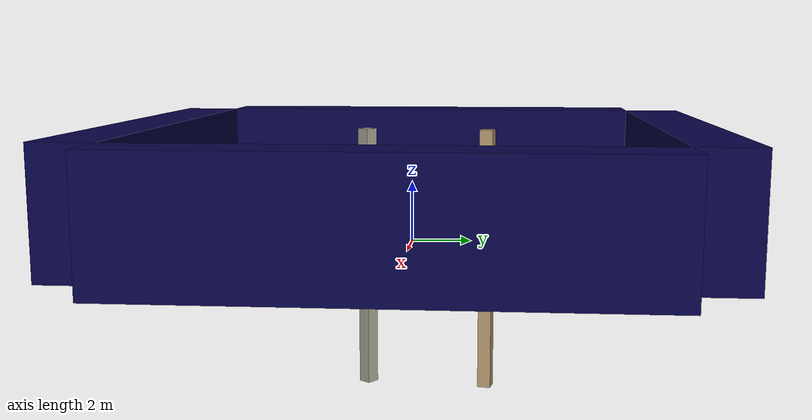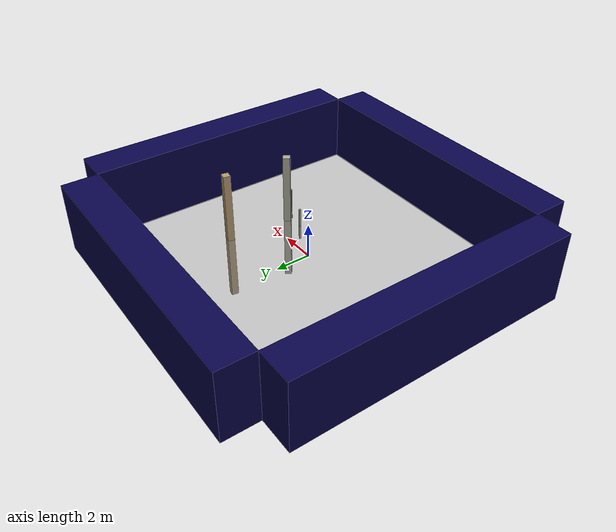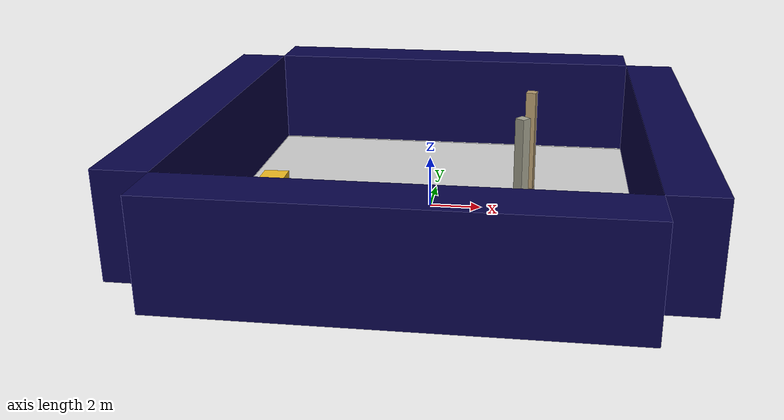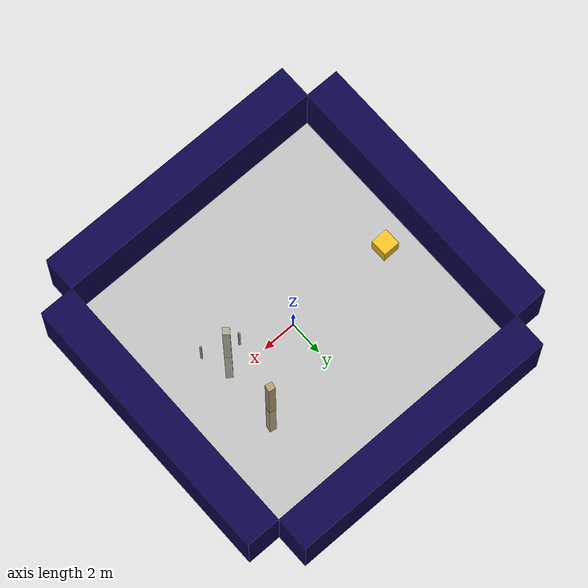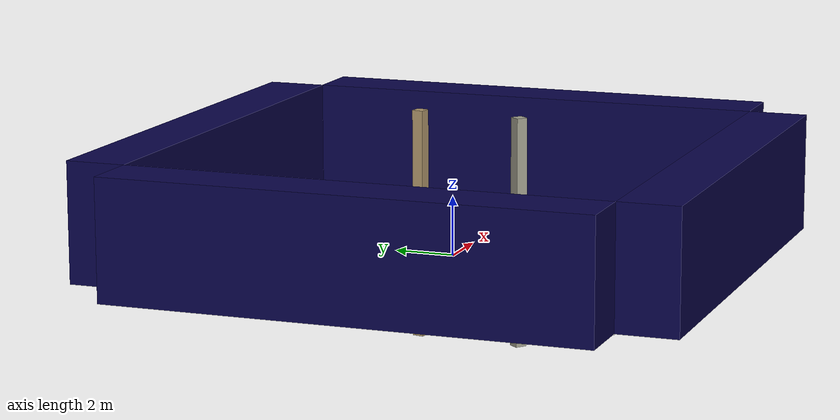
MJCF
<mujoco model="unnamed_model">
  <default>
    <default class="/" />
    <default class="border/" />
    <default class="border_1/" />
    <default class="border_2/" />
    <default class="border_3/" />
    <default class="light/" />
    <default class="agent/" />
    <default class="apple0/" />
    <default class="apple1/" />
    <default class="stone/" />
    <default class="stone_1/" />
  </default>
  <worldbody>
    <body name="border/">
      <body name="border/border" pos="0 9 2">
        <geom name="border/border_geom" class="border/" type="box" size="8.0 1.0 2.0" rgba="0.035 0.016 0.29 1.0" />
      </body>
    </body>
    <body name="border_1/">
      <body name="border_1/border" pos="0 -9 2">
        <geom name="border_1/border_geom" class="border_1/" type="box" size="8.0 1.0 2.0" rgba="0.035 0.016 0.29 1.0" />
      </body>
    </body>
    <body name="border_2/">
      <body name="border_2/border" pos="9 0 2">
        <geom name="border_2/border_geom" class="border_2/" type="box" size="1.0 8.0 2.0" rgba="0.035 0.016 0.29 1.0" />
      </body>
    </body>
    <body name="border_3/">
      <body name="border_3/border" pos="-9 0 2">
        <geom name="border_3/border_geom" class="border_3/" type="box" size="1.0 8.0 2.0" rgba="0.035 0.016 0.29 1.0" />
      </body>
    </body>
    <body name="light/">
      <body name="light/light" pos="0 0 15">
        <geom name="light/light_geom" class="light/" size="0.5" rgba="1.0 1.0 1.0 0.0" />
        <light name="light//unnamed_light_0" class="light/" />
      </body>
    </body>
    <body euler="0 0 270.97381246416398" name="agent/" pos="-6.4000000000000004 0 0.5">
      <joint name="agent/boxagent_freeJoint/" class="/" type="free" />
      <body name="agent/agent" pos="0 0 0" euler="0 0 0">
        <geom name="agent/boxagent_geom" class="agent/" type="box" size="0.5 0.5 0.5" rgba="0.949 0.7451 0.1333 1.0" euler="0 0 0" />
        <camera name="agent/boxagent_camera" class="agent/" fovy="90" pos="0 0 0.25" euler="-90 180 0" />
      </body>
    </body>
    <body name="apple0/">
      <body name="apple0/apple0" pos="3.8456999999999999 2.600200000000001 0.10000000000000001" euler="0 0 78.595462371037911">
        <geom name="apple0/apple_geom" class="apple0/" type="box" size="0.2 0.2 4.0" rgba="0.6980392156862745 0.6 0.43137254901960786 1.0" />
      </body>
    </body>
    <body name="apple1/">
      <body name="apple1/apple1" pos="2.6294500000000003 -1.2819000000000003 0.10000000000000001" euler="0 0 -96.688999992125432">
        <geom name="apple1/apple_geom" class="apple1/" type="box" size="0.05 0.05 1.0" rgba="0.6470588235294118 0.6392156862745098 0.5686274509803921 1.0" />
      </body>
    </body>
    <body name="stone/">
      <body name="stone/stone" pos="4.6142000000000003 -2.0272000000000006 0.10000000000000001" euler="0 0 -49.355895074261156">
        <geom name="stone/stone_geom" class="stone/" type="box" size="0.05 0.05 1.0" rgba="0.396078431372549 0.6705882352941176 0.48627450980392156 1.0" />
      </body>
    </body>
    <body name="stone_1/">
      <body name="stone_1/stone" pos="3.5946500000000001 -1.0823999999999998 0.10000000000000001" euler="0 0 51.359477602009662">
        <geom name="stone_1/stone_geom" class="stone_1/" type="box" size="0.2 0.2 4.0" rgba="0.6470588235294118 0.6392156862745098 0.5686274509803921 1.0" />
      </body>
    </body>
    <geom name="base_plane" class="/" type="plane" size="8 8 0.10000000000000001" />
  </worldbody>
</mujoco>
